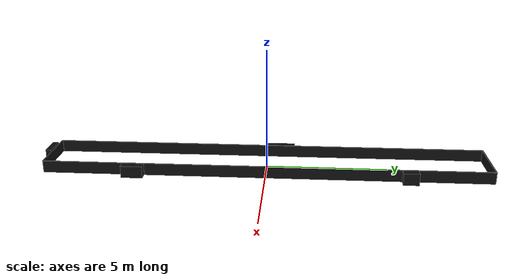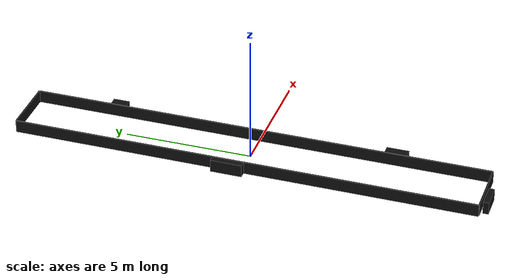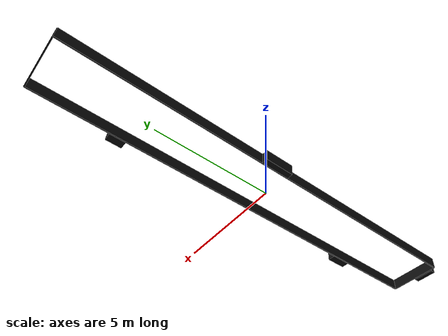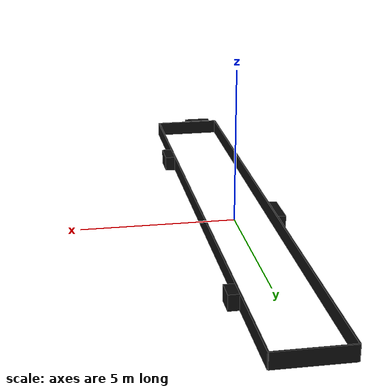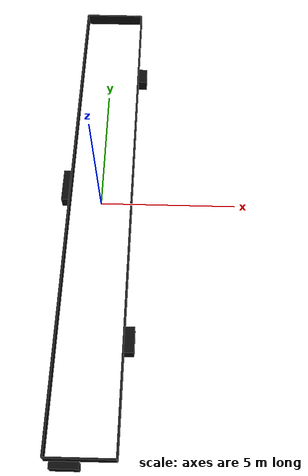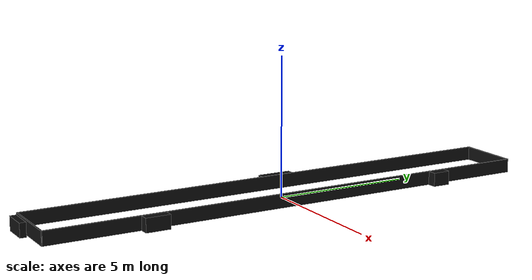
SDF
<?xml version="1.0"?>
<sdf version="1.6">
  <model name="warehouse_lidar_blocker_long_b">
    <static>true</static>
    <link name="link">
      <collision name="x_min_lidar_rail_collision">
        <pose>-1.15 0 0.25 0 0 0</pose>
        <geometry><box><size>0.05 18.30 0.50</size></box></geometry>
      </collision>
      <collision name="x_max_lidar_rail_collision">
        <pose>1.15 0 0.25 0 0 0</pose>
        <geometry><box><size>0.05 18.30 0.50</size></box></geometry>
      </collision>
      <collision name="y_min_lidar_rail_collision">
        <pose>0 -9.15 0.25 0 0 0</pose>
        <geometry><box><size>2.30 0.05 0.50</size></box></geometry>
      </collision>
      <collision name="y_max_lidar_rail_collision">
        <pose>0 9.15 0.25 0 0 0</pose>
        <geometry><box><size>2.30 0.05 0.50</size></box></geometry>
      </collision>
      <collision name="east_marker_low_collision">
        <pose>1.34 -5.40 0.25 0 0 0</pose>
        <geometry><box><size>0.34 0.88 0.50</size></box></geometry>
      </collision>
      <collision name="west_marker_mid_collision">
        <pose>-1.30 0.50 0.25 0 0 0</pose>
        <geometry><box><size>0.26 1.24 0.50</size></box></geometry>
      </collision>
      <collision name="east_marker_high_collision">
        <pose>1.34 5.80 0.25 0 0 0</pose>
        <geometry><box><size>0.34 0.64 0.50</size></box></geometry>
      </collision>
      <collision name="south_marker_collision">
        <pose>-0.45 -9.36 0.25 0 0 0</pose>
        <geometry><box><size>0.94 0.22 0.50</size></box></geometry>
      </collision>
      <visual name="x_min_lidar_rail">
        <pose>-1.15 0 0.25 0 0 0</pose>
        <cast_shadows>false</cast_shadows>
        <geometry><box><size>0.05 18.30 0.50</size></box></geometry>
        <material><ambient>0.03 0.03 0.03 1</ambient><diffuse>0.05 0.05 0.05 1</diffuse></material>
      </visual>
      <visual name="x_max_lidar_rail">
        <pose>1.15 0 0.25 0 0 0</pose>
        <cast_shadows>false</cast_shadows>
        <geometry><box><size>0.05 18.30 0.50</size></box></geometry>
        <material><ambient>0.03 0.03 0.03 1</ambient><diffuse>0.05 0.05 0.05 1</diffuse></material>
      </visual>
      <visual name="y_min_lidar_rail">
        <pose>0 -9.15 0.25 0 0 0</pose>
        <cast_shadows>false</cast_shadows>
        <geometry><box><size>2.30 0.05 0.50</size></box></geometry>
        <material><ambient>0.03 0.03 0.03 1</ambient><diffuse>0.05 0.05 0.05 1</diffuse></material>
      </visual>
      <visual name="y_max_lidar_rail">
        <pose>0 9.15 0.25 0 0 0</pose>
        <cast_shadows>false</cast_shadows>
        <geometry><box><size>2.30 0.05 0.50</size></box></geometry>
        <material><ambient>0.03 0.03 0.03 1</ambient><diffuse>0.05 0.05 0.05 1</diffuse></material>
      </visual>
      <visual name="east_marker_low">
        <pose>1.34 -5.40 0.25 0 0 0</pose>
        <cast_shadows>false</cast_shadows>
        <geometry><box><size>0.34 0.88 0.50</size></box></geometry>
        <material><ambient>0.03 0.03 0.03 1</ambient><diffuse>0.05 0.05 0.05 1</diffuse></material>
      </visual>
      <visual name="west_marker_mid">
        <pose>-1.30 0.50 0.25 0 0 0</pose>
        <cast_shadows>false</cast_shadows>
        <geometry><box><size>0.26 1.24 0.50</size></box></geometry>
        <material><ambient>0.03 0.03 0.03 1</ambient><diffuse>0.05 0.05 0.05 1</diffuse></material>
      </visual>
      <visual name="east_marker_high">
        <pose>1.34 5.80 0.25 0 0 0</pose>
        <cast_shadows>false</cast_shadows>
        <geometry><box><size>0.34 0.64 0.50</size></box></geometry>
        <material><ambient>0.03 0.03 0.03 1</ambient><diffuse>0.05 0.05 0.05 1</diffuse></material>
      </visual>
      <visual name="south_marker">
        <pose>-0.45 -9.36 0.25 0 0 0</pose>
        <cast_shadows>false</cast_shadows>
        <geometry><box><size>0.94 0.22 0.50</size></box></geometry>
        <material><ambient>0.03 0.03 0.03 1</ambient><diffuse>0.05 0.05 0.05 1</diffuse></material>
      </visual>
    </link>
  </model>
</sdf>
